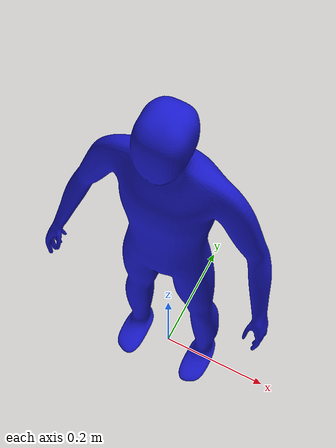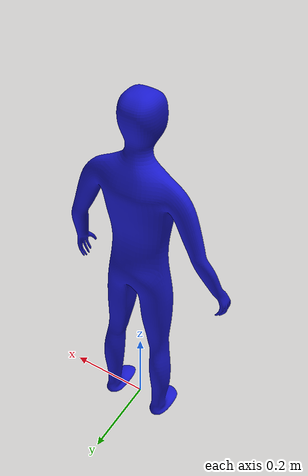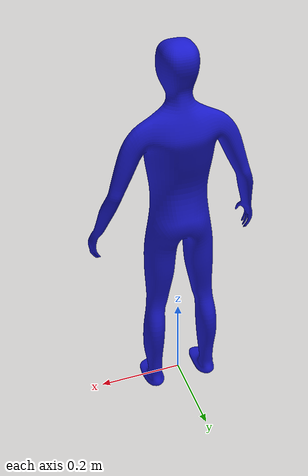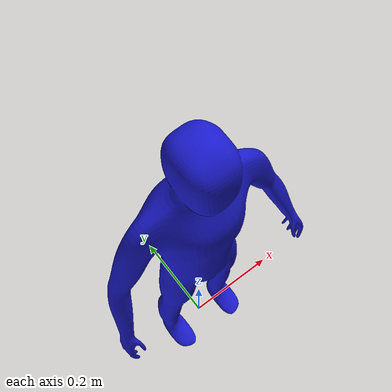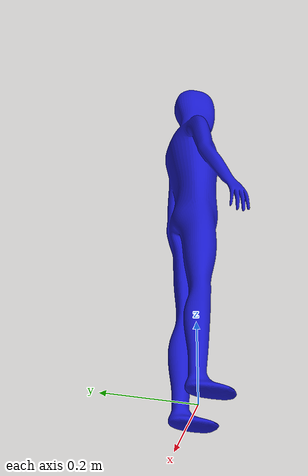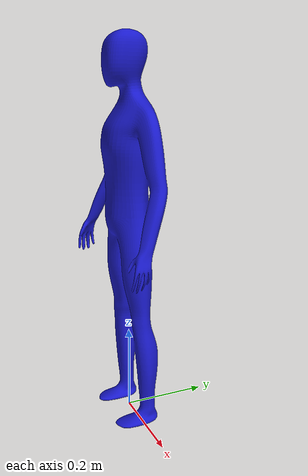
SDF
<?xml version='1.0'?>
<sdf version='1.7'>
    <model name="dummy">
        <static>true</static> <!-- 不受重力影响，固定 -->
        <link name="dummy_link">
            <pose>0 0 0 0 0 0</pose> <!-- 模型在世界中的位置，可自行调整 -->
            <visual name="dummy_visual">
                <geometry>
                    <mesh>
                        <uri>model://dummy/dummy.stl</uri>
                        <scale>0.45 0.45 0.45</scale> <!-- 视情况调整比例 -->
                    </mesh>
                </geometry>
                <material>
                    <!-- 蓝色材质 -->
                    <ambient>0.1 0.1 0.8 1</ambient>   <!-- 环境光颜色 -->
                    <diffuse>0.1 0.1 0.8 1</diffuse>   <!-- 漫反射颜色 -->
                    <specular>0.3 0.3 0.9 1</specular> <!-- 高光反射 -->
                    <emissive>0 0 0 1</emissive>       <!-- 自发光（通常为0） -->
                </material>
            </visual>
        </link>
    </model>
</sdf>
